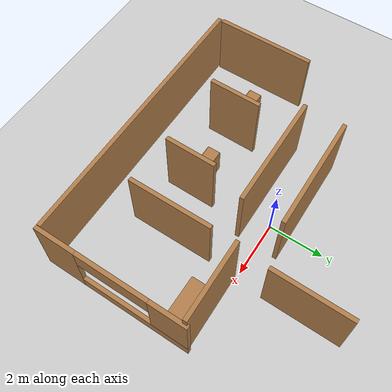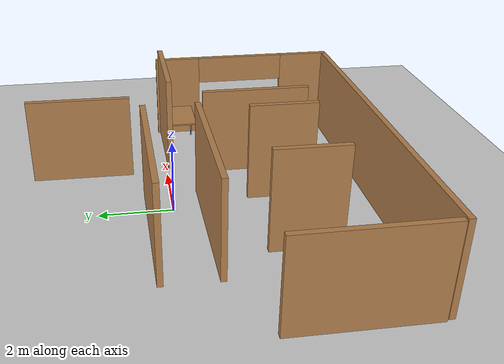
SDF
<sdf version="1.6">
 <world name="default">
  <include><uri>model://ground_plane</uri></include>
  <include><uri>model://sun</uri></include>
  <model name="world">
   <link name="Wall_88">
    <pose>-5.15151 -3.4628 0 0 -0 1.5708</pose>
    <inertial>
     <inertia><ixx>0</ixx><ixy>0</ixy><ixz>0</ixz><iyy>0</iyy><iyz>0</iyz><izz>0</izz></inertia>
     <mass>0</mass>
    </inertial>
    <visual name="Wall_88_Visual">
     <pose>0 0 1.25 0 -0 0</pose>
     <geometry><box><size>3.59711 0.15 2.5</size></box></geometry>
     <material>
      <script><uri>file://media/materials/scripts/gazebo.material</uri><name>Gazebo/Wood</name></script>
      <ambient>1 1 1 1</ambient>
      <diffuse>1 1 1 1</diffuse>
      <specular>0.2 0.2 0.2 1</specular>
      <emissive>0 0 0 1</emissive>
      <shader type="pixel"/>
     </material>
    </visual>
    <collision name="Wall_88_Collision">
     <pose>0 0 1.25 0 -0 0</pose>
     <geometry><box><size>3.59711 0.15 2.5</size></box></geometry>
     <surface>
      <friction>
       <ode><mu>1</mu><mu2>1</mu2><fdir1>0 0 0</fdir1><slip1>0</slip1><slip2>0</slip2></ode>
       <torsional>
        <coefficient>1</coefficient>
        <patch_radius>0</patch_radius>
        <surface_radius>0</surface_radius>
        <use_patch_radius>1</use_patch_radius>
        <ode><slip>0</slip></ode>
       </torsional>
      </friction>
      <bounce><restitution_coefficient>0</restitution_coefficient><threshold>1e+06</threshold></bounce>
      <contact>
       <collide_without_contact>0</collide_without_contact>
       <collide_without_contact_bitmask>1</collide_without_contact_bitmask>
       <collide_bitmask>1</collide_bitmask>
       <ode>
        <soft_cfm>0</soft_cfm>
        <soft_erp>0.2</soft_erp>
        <kp>1e+13</kp>
        <kd>1</kd>
        <max_vel>0.01</max_vel>
        <min_depth>0</min_depth>
       </ode>
       <bullet>
        <split_impulse>1</split_impulse>
        <split_impulse_penetration_threshold>-0.01</split_impulse_penetration_threshold>
        <soft_cfm>0</soft_cfm>
        <soft_erp>0.2</soft_erp>
        <kp>1e+13</kp>
        <kd>1</kd>
       </bullet>
      </contact>
     </surface>
    </collision>
   </link>
   <link name="Wall_88_clone">
    <pose>0.386788 -2.98185 0.146336 0 0 -1.57962</pose>
    <inertial>
     <inertia><ixx>0</ixx><ixy>0</ixy><ixz>0</ixz><iyy>0</iyy><iyz>0</iyz><izz>0</izz></inertia>
     <mass>0</mass>
    </inertial>
    <visual name="Wall_88_Visual">
     <pose>0 0 1.25 0 -0 0</pose>
     <geometry><box><size>1.84109 0.15 2.72696</size></box></geometry>
     <material>
      <script><uri>file://media/materials/scripts/gazebo.material</uri><name>Gazebo/Wood</name></script>
      <ambient>1 1 1 1</ambient>
      <diffuse>1 1 1 1</diffuse>
      <specular>0.2 0.2 0.2 1</specular>
      <emissive>0 0 0 1</emissive>
      <shader type="pixel"/>
     </material>
    </visual>
    <collision name="Wall_88_Collision">
     <pose>0 0 1.25 0 -0 0</pose>
     <geometry><box><size>1.84109 0.15 2.72696</size></box></geometry>
     <surface>
      <friction>
       <ode><mu>1</mu><mu2>1</mu2><fdir1>0 0 0</fdir1><slip1>0</slip1><slip2>0</slip2></ode>
       <torsional>
        <coefficient>1</coefficient>
        <patch_radius>0</patch_radius>
        <surface_radius>0</surface_radius>
        <use_patch_radius>1</use_patch_radius>
        <ode><slip>0</slip></ode>
       </torsional>
      </friction>
      <bounce><restitution_coefficient>0</restitution_coefficient><threshold>1e+06</threshold></bounce>
      <contact>
       <collide_without_contact>0</collide_without_contact>
       <collide_without_contact_bitmask>1</collide_without_contact_bitmask>
       <collide_bitmask>1</collide_bitmask>
       <ode>
        <soft_cfm>0</soft_cfm>
        <soft_erp>0.2</soft_erp>
        <kp>1e+13</kp>
        <kd>1</kd>
        <max_vel>0.01</max_vel>
        <min_depth>0</min_depth>
       </ode>
       <bullet>
        <split_impulse>1</split_impulse>
        <split_impulse_penetration_threshold>-0.01</split_impulse_penetration_threshold>
        <soft_cfm>0</soft_cfm>
        <soft_erp>0.2</soft_erp>
        <kp>1e+13</kp>
        <kd>1</kd>
       </bullet>
      </contact>
     </surface>
    </collision>
   </link>
   <link name="Wall_88_clone_clone_0_clone">
    <pose>-2.31759 -2.99242 0.227838 0 0 -1.57962</pose>
    <inertial>
     <inertia><ixx>0</ixx><ixy>0</ixy><ixz>0</ixz><iyy>0</iyy><iyz>0</iyz><izz>0</izz></inertia>
     <mass>0</mass>
    </inertial>
    <visual name="Wall_88_Visual">
     <pose>0 0 1.25 0 -0 0</pose>
     <geometry><box><size>1.88111 0.15 2.74078</size></box></geometry>
     <material>
      <script><uri>file://media/materials/scripts/gazebo.material</uri><name>Gazebo/Wood</name></script>
      <ambient>1 1 1 1</ambient>
      <diffuse>1 1 1 1</diffuse>
      <specular>0.2 0.2 0.2 1</specular>
      <emissive>0 0 0 1</emissive>
      <shader type="pixel"/>
     </material>
    </visual>
    <collision name="Wall_88_Collision">
     <pose>0 0 1.25 0 -0 0</pose>
     <geometry><box><size>1.88111 0.15 2.74078</size></box></geometry>
     <surface>
      <friction>
       <ode><mu>1</mu><mu2>1</mu2><fdir1>0 0 0</fdir1><slip1>0</slip1><slip2>0</slip2></ode>
       <torsional>
        <coefficient>1</coefficient>
        <patch_radius>0</patch_radius>
        <surface_radius>0</surface_radius>
        <use_patch_radius>1</use_patch_radius>
        <ode><slip>0</slip></ode>
       </torsional>
      </friction>
      <bounce><restitution_coefficient>0</restitution_coefficient><threshold>1e+06</threshold></bounce>
      <contact>
       <collide_without_contact>0</collide_without_contact>
       <collide_without_contact_bitmask>1</collide_without_contact_bitmask>
       <collide_bitmask>1</collide_bitmask>
       <ode>
        <soft_cfm>0</soft_cfm>
        <soft_erp>0.2</soft_erp>
        <kp>1e+13</kp>
        <kd>1</kd>
        <max_vel>0.01</max_vel>
        <min_depth>0</min_depth>
       </ode>
       <bullet>
        <split_impulse>1</split_impulse>
        <split_impulse_penetration_threshold>-0.01</split_impulse_penetration_threshold>
        <soft_cfm>0</soft_cfm>
        <soft_erp>0.2</soft_erp>
        <kp>1e+13</kp>
        <kd>1</kd>
       </bullet>
      </contact>
     </surface>
    </collision>
   </link>
   <link name="Wall_88_clone_clone_0_clone_0">
    <pose>-1.15582 0.643238 0.112815 0 0 -3.12845</pose>
    <inertial>
     <inertia><ixx>0</ixx><ixy>0</ixy><ixz>0</ixz><iyy>0</iyy><iyz>0</iyz><izz>0</izz></inertia>
     <mass>0</mass>
    </inertial>
    <visual name="Wall_88_Visual">
     <pose>0 0 1.25 0 -0 0</pose>
     <geometry><box><size>4.17126 0.15 2.67838</size></box></geometry>
     <material>
      <script><uri>file://media/materials/scripts/gazebo.material</uri><name>Gazebo/Wood</name></script>
      <ambient>1 1 1 1</ambient>
      <diffuse>1 1 1 1</diffuse>
      <specular>0.2 0.2 0.2 1</specular>
      <emissive>0 0 0 1</emissive>
      <shader type="pixel"/>
     </material>
    </visual>
    <collision name="Wall_88_Collision">
     <pose>0 0 1.25 0 -0 0</pose>
     <geometry><box><size>4.17126 0.15 2.67838</size></box></geometry>
     <surface>
      <friction>
       <ode><mu>1</mu><mu2>1</mu2><fdir1>0 0 0</fdir1><slip1>0</slip1><slip2>0</slip2></ode>
       <torsional>
        <coefficient>1</coefficient>
        <patch_radius>0</patch_radius>
        <surface_radius>0</surface_radius>
        <use_patch_radius>1</use_patch_radius>
        <ode><slip>0</slip></ode>
       </torsional>
      </friction>
      <bounce><restitution_coefficient>0</restitution_coefficient><threshold>1e+06</threshold></bounce>
      <contact>
       <collide_without_contact>0</collide_without_contact>
       <collide_without_contact_bitmask>1</collide_without_contact_bitmask>
       <collide_bitmask>1</collide_bitmask>
       <ode>
        <soft_cfm>0</soft_cfm>
        <soft_erp>0.2</soft_erp>
        <kp>1e+13</kp>
        <kd>1</kd>
        <max_vel>0.01</max_vel>
        <min_depth>0</min_depth>
       </ode>
       <bullet>
        <split_impulse>1</split_impulse>
        <split_impulse_penetration_threshold>-0.01</split_impulse_penetration_threshold>
        <soft_cfm>0</soft_cfm>
        <soft_erp>0.2</soft_erp>
        <kp>1e+13</kp>
        <kd>1</kd>
       </bullet>
      </contact>
     </surface>
    </collision>
   </link>
   <link name="Wall_88_clone_clone_0_clone_0_clone">
    <pose>-1.16525 -0.804383 0.112815 0 0 -3.12845</pose>
    <inertial>
     <inertia><ixx>0</ixx><ixy>0</ixy><ixz>0</ixz><iyy>0</iyy><iyz>0</iyz><izz>0</izz></inertia>
     <mass>0</mass>
    </inertial>
    <visual name="Wall_88_Visual">
     <pose>0 0 1.25 0 -0 0</pose>
     <geometry><box><size>4.17126 0.15 2.67838</size></box></geometry>
     <material>
      <script><uri>file://media/materials/scripts/gazebo.material</uri><name>Gazebo/Wood</name></script>
      <ambient>1 1 1 1</ambient>
      <diffuse>1 1 1 1</diffuse>
      <specular>0.2 0.2 0.2 1</specular>
      <emissive>0 0 0 1</emissive>
      <shader type="pixel"/>
     </material>
    </visual>
    <collision name="Wall_88_Collision">
     <pose>0 0 1.25 0 -0 0</pose>
     <geometry><box><size>4.17126 0.15 2.67838</size></box></geometry>
     <surface>
      <friction>
       <ode><mu>1</mu><mu2>1</mu2><fdir1>0 0 0</fdir1><slip1>0</slip1><slip2>0</slip2></ode>
       <torsional>
        <coefficient>1</coefficient>
        <patch_radius>0</patch_radius>
        <surface_radius>0</surface_radius>
        <use_patch_radius>1</use_patch_radius>
        <ode><slip>0</slip></ode>
       </torsional>
      </friction>
      <bounce><restitution_coefficient>0</restitution_coefficient><threshold>1e+06</threshold></bounce>
      <contact>
       <collide_without_contact>0</collide_without_contact>
       <collide_without_contact_bitmask>1</collide_without_contact_bitmask>
       <collide_bitmask>1</collide_bitmask>
       <ode>
        <soft_cfm>0</soft_cfm>
        <soft_erp>0.2</soft_erp>
        <kp>1e+13</kp>
        <kd>1</kd>
        <max_vel>0.01</max_vel>
        <min_depth>0</min_depth>
       </ode>
       <bullet>
        <split_impulse>1</split_impulse>
        <split_impulse_penetration_threshold>-0.01</split_impulse_penetration_threshold>
        <soft_cfm>0</soft_cfm>
        <soft_erp>0.2</soft_erp>
        <kp>1e+13</kp>
        <kd>1</kd>
       </bullet>
      </contact>
     </surface>
    </collision>
   </link>
   <link name="Wall_88_clone_clone_0_clone_1">
    <pose>3.59873 -0.112247 0.164975 0 0 -3.12845</pose>
    <inertial>
     <inertia><ixx>0</ixx><ixy>0</ixy><ixz>0</ixz><iyy>0</iyy><iyz>0</iyz><izz>0</izz></inertia>
     <mass>0</mass>
    </inertial>
    <visual name="Wall_88_Visual">
     <pose>0 0 1.25 0 -0 0</pose>
     <geometry><box><size>2.794 0.15 2.77966</size></box></geometry>
     <material>
      <script><uri>file://media/materials/scripts/gazebo.material</uri><name>Gazebo/Wood</name></script>
      <ambient>1 1 1 1</ambient>
      <diffuse>1 1 1 1</diffuse>
      <specular>0.2 0.2 0.2 1</specular>
      <emissive>0 0 0 1</emissive>
      <shader type="pixel"/>
     </material>
    </visual>
    <collision name="Wall_88_Collision">
     <pose>0 0 1.25 0 -0 0</pose>
     <geometry><box><size>2.794 0.15 2.77966</size></box></geometry>
     <surface>
      <friction>
       <ode><mu>1</mu><mu2>1</mu2><fdir1>0 0 0</fdir1><slip1>0</slip1><slip2>0</slip2></ode>
       <torsional>
        <coefficient>1</coefficient>
        <patch_radius>0</patch_radius>
        <surface_radius>0</surface_radius>
        <use_patch_radius>1</use_patch_radius>
        <ode><slip>0</slip></ode>
       </torsional>
      </friction>
      <bounce><restitution_coefficient>0</restitution_coefficient><threshold>1e+06</threshold></bounce>
      <contact>
       <collide_without_contact>0</collide_without_contact>
       <collide_without_contact_bitmask>1</collide_without_contact_bitmask>
       <collide_bitmask>1</collide_bitmask>
       <ode>
        <soft_cfm>0</soft_cfm>
        <soft_erp>0.2</soft_erp>
        <kp>1e+13</kp>
        <kd>1</kd>
        <max_vel>0.01</max_vel>
        <min_depth>0</min_depth>
       </ode>
       <bullet>
        <split_impulse>1</split_impulse>
        <split_impulse_penetration_threshold>-0.01</split_impulse_penetration_threshold>
        <soft_cfm>0</soft_cfm>
        <soft_erp>0.2</soft_erp>
        <kp>1e+13</kp>
        <kd>1</kd>
       </bullet>
      </contact>
     </surface>
    </collision>
   </link>
   <link name="Wall_88_clone_clone_1_clone">
    <pose>2.27024 2.40147 -0.083025 0 0 -1.57962</pose>
    <inertial>
     <inertia><ixx>0</ixx><ixy>0</ixy><ixz>0</ixz><iyy>0</iyy><iyz>0</iyz><izz>0</izz></inertia>
     <mass>0</mass>
    </inertial>
    <visual name="Wall_88_Visual">
     <pose>0 0 1.25 0 -0 0</pose>
     <geometry><box><size>2.83827 0.15 2.45305</size></box></geometry>
     <material>
      <script><uri>file://media/materials/scripts/gazebo.material</uri><name>Gazebo/Wood</name></script>
      <ambient>1 1 1 1</ambient>
      <diffuse>1 1 1 1</diffuse>
      <specular>0.2 0.2 0.2 1</specular>
      <emissive>0 0 0 1</emissive>
      <shader type="pixel"/>
     </material>
    </visual>
    <collision name="Wall_88_Collision">
     <pose>0 0 1.25 0 -0 0</pose>
     <geometry><box><size>2.83827 0.15 2.45305</size></box></geometry>
     <surface>
      <friction>
       <ode><mu>1</mu><mu2>1</mu2><fdir1>0 0 0</fdir1><slip1>0</slip1><slip2>0</slip2></ode>
       <torsional>
        <coefficient>1</coefficient>
        <patch_radius>0</patch_radius>
        <surface_radius>0</surface_radius>
        <use_patch_radius>1</use_patch_radius>
        <ode><slip>0</slip></ode>
       </torsional>
      </friction>
      <bounce><restitution_coefficient>0</restitution_coefficient><threshold>1e+06</threshold></bounce>
      <contact>
       <collide_without_contact>0</collide_without_contact>
       <collide_without_contact_bitmask>1</collide_without_contact_bitmask>
       <collide_bitmask>1</collide_bitmask>
       <ode>
        <soft_cfm>0</soft_cfm>
        <soft_erp>0.2</soft_erp>
        <kp>1e+13</kp>
        <kd>1</kd>
        <max_vel>0.01</max_vel>
        <min_depth>0</min_depth>
       </ode>
       <bullet>
        <split_impulse>1</split_impulse>
        <split_impulse_penetration_threshold>-0.01</split_impulse_penetration_threshold>
        <soft_cfm>0</soft_cfm>
        <soft_erp>0.2</soft_erp>
        <kp>1e+13</kp>
        <kd>1</kd>
       </bullet>
      </contact>
     </surface>
    </collision>
   </link>
   <link name="Wall_93">
    <pose>2.13924 -2.58302 0 0 0 -1.5708</pose>
    <inertial>
     <inertia><ixx>0</ixx><ixy>0</ixy><ixz>0</ixz><iyy>0</iyy><iyz>0</iyz><izz>0</izz></inertia>
     <mass>0</mass>
    </inertial>
    <visual name="Wall_93_Visual">
     <pose>0 0 1.25 0 -0 0</pose>
     <geometry><box><size>3.04334 0.15 2.5</size></box></geometry>
     <material>
      <script><uri>file://media/materials/scripts/gazebo.material</uri><name>Gazebo/Wood</name></script>
      <ambient>1 1 1 1</ambient>
      <diffuse>1 1 1 1</diffuse>
      <specular>0.2 0.2 0.2 1</specular>
      <emissive>0 0 0 1</emissive>
      <shader type="pixel"/>
     </material>
    </visual>
    <collision name="Wall_93_Collision">
     <pose>0 0 1.25 0 -0 0</pose>
     <geometry><box><size>3.04334 0.15 2.5</size></box></geometry>
     <surface>
      <friction>
       <ode><mu>1</mu><mu2>1</mu2><fdir1>0 0 0</fdir1><slip1>0</slip1><slip2>0</slip2></ode>
       <torsional>
        <coefficient>1</coefficient>
        <patch_radius>0</patch_radius>
        <surface_radius>0</surface_radius>
        <use_patch_radius>1</use_patch_radius>
        <ode><slip>0</slip></ode>
       </torsional>
      </friction>
      <bounce><restitution_coefficient>0</restitution_coefficient><threshold>1e+06</threshold></bounce>
      <contact>
       <collide_without_contact>0</collide_without_contact>
       <collide_without_contact_bitmask>1</collide_without_contact_bitmask>
       <collide_bitmask>1</collide_bitmask>
       <ode>
        <soft_cfm>0</soft_cfm>
        <soft_erp>0.2</soft_erp>
        <kp>1e+13</kp>
        <kd>1</kd>
        <max_vel>0.01</max_vel>
        <min_depth>0</min_depth>
       </ode>
       <bullet>
        <split_impulse>1</split_impulse>
        <split_impulse_penetration_threshold>-0.01</split_impulse_penetration_threshold>
        <soft_cfm>0</soft_cfm>
        <soft_erp>0.2</soft_erp>
        <kp>1e+13</kp>
        <kd>1</kd>
       </bullet>
      </contact>
     </surface>
    </collision>
   </link>
   <link name="Wall_94">
    <pose>-0.119907 -5.38792 0 0 -0 0</pose>
    <inertial>
     <inertia><ixx>0</ixx><ixy>0</ixy><ixz>0</ixz><iyy>0</iyy><iyz>0</iyz><izz>0</izz></inertia>
     <mass>0</mass>
    </inertial>
    <visual name="Wall_94_Visual">
     <pose>0 0 1.25 0 -0 0</pose>
     <geometry><box><size>10.1033 0.15 2.5</size></box></geometry>
     <material>
      <script><uri>file://media/materials/scripts/gazebo.material</uri><name>Gazebo/Wood</name></script>
      <ambient>1 1 1 1</ambient>
      <diffuse>1 1 1 1</diffuse>
      <specular>0.2 0.2 0.2 1</specular>
      <emissive>0 0 0 1</emissive>
      <shader type="pixel"/>
     </material>
    </visual>
    <collision name="Wall_94_Collision">
     <pose>0 0 1.25 0 -0 0</pose>
     <geometry><box><size>10.1033 0.15 2.5</size></box></geometry>
     <surface>
      <friction>
       <ode><mu>1</mu><mu2>1</mu2><fdir1>0 0 0</fdir1><slip1>0</slip1><slip2>0</slip2></ode>
       <torsional>
        <coefficient>1</coefficient>
        <patch_radius>0</patch_radius>
        <surface_radius>0</surface_radius>
        <use_patch_radius>1</use_patch_radius>
        <ode><slip>0</slip></ode>
       </torsional>
      </friction>
      <bounce><restitution_coefficient>0</restitution_coefficient><threshold>1e+06</threshold></bounce>
      <contact>
       <collide_without_contact>0</collide_without_contact>
       <collide_without_contact_bitmask>1</collide_without_contact_bitmask>
       <collide_bitmask>1</collide_bitmask>
       <ode>
        <soft_cfm>0</soft_cfm>
        <soft_erp>0.2</soft_erp>
        <kp>1e+13</kp>
        <kd>1</kd>
        <max_vel>0.01</max_vel>
        <min_depth>0</min_depth>
       </ode>
       <bullet>
        <split_impulse>1</split_impulse>
        <split_impulse_penetration_threshold>-0.01</split_impulse_penetration_threshold>
        <soft_cfm>0</soft_cfm>
        <soft_erp>0.2</soft_erp>
        <kp>1e+13</kp>
        <kd>1</kd>
       </bullet>
      </contact>
     </surface>
    </collision>
   </link>
   <link name="Wall_96_clone">
    <pose>5.01671 -2.70631 0 0 -0 1.5708</pose>
    <visual name="Wall_96_Visual_0">
     <pose>-1.99826 0 1.25 0 -0 0</pose>
     <geometry><box><size>1.50348 0.15 2.5</size></box></geometry>
     <material>
      <script><uri>file://media/materials/scripts/gazebo.material</uri><name>Gazebo/Wood</name></script>
      <ambient>1 1 1 1</ambient>
      <diffuse>1 1 1 1</diffuse>
      <specular>0.2 0.2 0.2 1</specular>
      <emissive>0 0 0 1</emissive>
      <shader type="pixel"/>
     </material>
    </visual>
    <visual name="Wall_96_Visual_1">
     <pose>0.75174 0 0.25 0 -0 0</pose>
     <geometry><box><size>3.99652 0.15 0.5</size></box></geometry>
     <material>
      <script><uri>file://media/materials/scripts/gazebo.material</uri><name>Gazebo/Wood</name></script>
      <ambient>1 1 1 1</ambient>
      <diffuse>1 1 1 1</diffuse>
      <specular>0.2 0.2 0.2 1</specular>
      <emissive>0 0 0 1</emissive>
      <shader type="pixel"/>
     </material>
    </visual>
    <visual name="Wall_96_Visual_2">
     <pose>2.06924 0 1.5 0 -0 0</pose>
     <geometry><box><size>1.36152 0.15 2</size></box></geometry>
     <material>
      <script><uri>file://media/materials/scripts/gazebo.material</uri><name>Gazebo/Wood</name></script>
      <ambient>1 1 1 1</ambient>
      <diffuse>1 1 1 1</diffuse>
      <specular>0.2 0.2 0.2 1</specular>
      <emissive>0 0 0 1</emissive>
      <shader type="pixel"/>
     </material>
    </visual>
    <visual name="Wall_96_Visual_3">
     <pose>0.070981 0 2.1 0 -0 0</pose>
     <geometry><box><size>2.635 0.15 0.8</size></box></geometry>
     <material>
      <script><uri>file://media/materials/scripts/gazebo.material</uri><name>Gazebo/Wood</name></script>
      <ambient>1 1 1 1</ambient>
      <diffuse>1 1 1 1</diffuse>
      <specular>0.2 0.2 0.2 1</specular>
      <emissive>0 0 0 1</emissive>
      <shader type="pixel"/>
     </material>
    </visual>
    <collision name="Wall_96_Collision_1">
     <pose>0.75174 0 0.25 0 -0 0</pose>
     <geometry><box><size>3.99652 0.15 0.5</size></box></geometry>
     <surface>
      <friction>
       <ode><mu>1</mu><mu2>1</mu2><fdir1>0 0 0</fdir1><slip1>0</slip1><slip2>0</slip2></ode>
       <torsional>
        <coefficient>1</coefficient>
        <patch_radius>0</patch_radius>
        <surface_radius>0</surface_radius>
        <use_patch_radius>1</use_patch_radius>
        <ode><slip>0</slip></ode>
       </torsional>
      </friction>
      <bounce><restitution_coefficient>0</restitution_coefficient><threshold>1e+06</threshold></bounce>
      <contact>
       <collide_without_contact>0</collide_without_contact>
       <collide_without_contact_bitmask>1</collide_without_contact_bitmask>
       <collide_bitmask>1</collide_bitmask>
       <ode>
        <soft_cfm>0</soft_cfm>
        <soft_erp>0.2</soft_erp>
        <kp>1e+13</kp>
        <kd>1</kd>
        <max_vel>0.01</max_vel>
        <min_depth>0</min_depth>
       </ode>
       <bullet>
        <split_impulse>1</split_impulse>
        <split_impulse_penetration_threshold>-0.01</split_impulse_penetration_threshold>
        <soft_cfm>0</soft_cfm>
        <soft_erp>0.2</soft_erp>
        <kp>1e+13</kp>
        <kd>1</kd>
       </bullet>
      </contact>
     </surface>
    </collision>
    <collision name="Wall_96_Collision_2">
     <pose>2.06924 0 1.5 0 -0 0</pose>
     <geometry><box><size>1.36152 0.15 2</size></box></geometry>
     <surface>
      <friction>
       <ode><mu>1</mu><mu2>1</mu2><fdir1>0 0 0</fdir1><slip1>0</slip1><slip2>0</slip2></ode>
       <torsional>
        <coefficient>1</coefficient>
        <patch_radius>0</patch_radius>
        <surface_radius>0</surface_radius>
        <use_patch_radius>1</use_patch_radius>
        <ode><slip>0</slip></ode>
       </torsional>
      </friction>
      <bounce><restitution_coefficient>0</restitution_coefficient><threshold>1e+06</threshold></bounce>
      <contact>
       <collide_without_contact>0</collide_without_contact>
       <collide_without_contact_bitmask>1</collide_without_contact_bitmask>
       <collide_bitmask>1</collide_bitmask>
       <ode>
        <soft_cfm>0</soft_cfm>
        <soft_erp>0.2</soft_erp>
        <kp>1e+13</kp>
        <kd>1</kd>
        <max_vel>0.01</max_vel>
        <min_depth>0</min_depth>
       </ode>
       <bullet>
        <split_impulse>1</split_impulse>
        <split_impulse_penetration_threshold>-0.01</split_impulse_penetration_threshold>
        <soft_cfm>0</soft_cfm>
        <soft_erp>0.2</soft_erp>
        <kp>1e+13</kp>
        <kd>1</kd>
       </bullet>
      </contact>
     </surface>
    </collision>
    <collision name="Wall_96_Collision_3">
     <pose>0.070981 0 2.1 0 -0 0</pose>
     <geometry><box><size>2.635 0.15 0.8</size></box></geometry>
     <surface>
      <friction>
       <ode><mu>1</mu><mu2>1</mu2><fdir1>0 0 0</fdir1><slip1>0</slip1><slip2>0</slip2></ode>
       <torsional>
        <coefficient>1</coefficient>
        <patch_radius>0</patch_radius>
        <surface_radius>0</surface_radius>
        <use_patch_radius>1</use_patch_radius>
        <ode><slip>0</slip></ode>
       </torsional>
      </friction>
      <bounce><restitution_coefficient>0</restitution_coefficient><threshold>1e+06</threshold></bounce>
      <contact>
       <collide_without_contact>0</collide_without_contact>
       <collide_without_contact_bitmask>1</collide_without_contact_bitmask>
       <collide_bitmask>1</collide_bitmask>
       <ode>
        <soft_cfm>0</soft_cfm>
        <soft_erp>0.2</soft_erp>
        <kp>1e+13</kp>
        <kd>1</kd>
        <max_vel>0.01</max_vel>
        <min_depth>0</min_depth>
       </ode>
       <bullet>
        <split_impulse>1</split_impulse>
        <split_impulse_penetration_threshold>-0.01</split_impulse_penetration_threshold>
        <soft_cfm>0</soft_cfm>
        <soft_erp>0.2</soft_erp>
        <kp>1e+13</kp>
        <kd>1</kd>
       </bullet>
      </contact>
     </surface>
    </collision>
    <collision name="Wall_96_Collision_0">
     <pose>-1.99826 0 1.25 0 -0 0</pose>
     <geometry><box><size>1.50348 0.15 2.5</size></box></geometry>
     <surface>
      <friction>
       <ode><mu>1</mu><mu2>1</mu2><fdir1>0 0 0</fdir1><slip1>0</slip1><slip2>0</slip2></ode>
       <torsional>
        <coefficient>1</coefficient>
        <patch_radius>0</patch_radius>
        <surface_radius>0</surface_radius>
        <use_patch_radius>1</use_patch_radius>
        <ode><slip>0</slip></ode>
       </torsional>
      </friction>
      <bounce><restitution_coefficient>0</restitution_coefficient><threshold>1e+06</threshold></bounce>
      <contact>
       <collide_without_contact>0</collide_without_contact>
       <collide_without_contact_bitmask>1</collide_without_contact_bitmask>
       <collide_bitmask>1</collide_bitmask>
       <ode>
        <soft_cfm>0</soft_cfm>
        <soft_erp>0.2</soft_erp>
        <kp>1e+13</kp>
        <kd>1</kd>
        <max_vel>0.01</max_vel>
        <min_depth>0</min_depth>
       </ode>
       <bullet>
        <split_impulse>1</split_impulse>
        <split_impulse_penetration_threshold>-0.01</split_impulse_penetration_threshold>
        <soft_cfm>0</soft_cfm>
        <soft_erp>0.2</soft_erp>
        <kp>1e+13</kp>
        <kd>1</kd>
       </bullet>
      </contact>
     </surface>
    </collision>
   </link>
   <model name="cabinet">
    <static>1</static>
    <link name="cabinet_bottom_plate">
     <inertial>
      <pose>0 0 -1 0 -0 0</pose>
      <inertia><ixx>2.05</ixx><ixy>0</ixy><ixz>0</ixz><iyy>2.05</iyy><iyz>0</iyz><izz>2.05</izz></inertia>
      <mass>25</mass>
     </inertial>
     <collision name="cabinet_bottom_plate_geom">
      <pose>0 0 0.01 0 -0 0</pose>
      <geometry><box><size>0.45 0.45 0.02</size></box></geometry>
     </collision>
     <visual name="cabinet_bottom_plate_geom_visual">
      <pose>0 0 0.01 0 -0 0</pose>
      <geometry><box><size>0.45 0.45 0.02</size></box></geometry>
      <material>
       <script><uri>file://media/materials/scripts/gazebo.material</uri><name>Gazebo/Wood</name></script>
      </material>
     </visual>
     <collision name="cabinet_bottom_plate_geom_cabinet_back_plate">
      <pose>0.235 0 0.51 0 -0 0</pose>
      <geometry><box><size>0.02 0.45 1.02</size></box></geometry>
     </collision>
     <visual name="cabinet_bottom_plate_geom_cabinet_back_plate_visual">
      <pose>0.235 0 0.51 0 -0 0</pose>
      <geometry><box><size>0.02 0.45 1.02</size></box></geometry>
      <material>
       <script><uri>file://media/materials/scripts/gazebo.material</uri><name>Gazebo/Wood</name></script>
      </material>
     </visual>
     <collision name="cabinet_bottom_plate_geom_cabinet_left_plate">
      <pose>0 0.235 0.51 0 -0 0</pose>
      <geometry><box><size>0.45 0.02 1.02</size></box></geometry>
     </collision>
     <visual name="cabinet_bottom_plate_geom_cabinet_left_plate_visual">
      <pose>0 0.235 0.51 0 -0 0</pose>
      <geometry><box><size>0.45 0.02 1.02</size></box></geometry>
      <material>
       <script><uri>file://media/materials/scripts/gazebo.material</uri><name>Gazebo/Wood</name></script>
      </material>
     </visual>
     <collision name="cabinet_bottom_plate_geom_cabinet_middle_plate">
      <pose>0 0 0.51 0 -0 0</pose>
      <geometry><box><size>0.45 0.45 0.02</size></box></geometry>
     </collision>
     <visual name="cabinet_bottom_plate_geom_cabinet_middle_plate_visual">
      <pose>0 0 0.51 0 -0 0</pose>
      <geometry><box><size>0.45 0.45 0.02</size></box></geometry>
      <material>
       <script><uri>file://media/materials/scripts/gazebo.material</uri><name>Gazebo/Wood</name></script>
      </material>
     </visual>
     <collision name="cabinet_bottom_plate_geom_cabinet_right_plate">
      <pose>0 -0.235 0.51 0 -0 0</pose>
      <geometry><box><size>0.45 0.02 1.02</size></box></geometry>
     </collision>
     <visual name="cabinet_bottom_plate_geom_cabinet_right_plate_visual">
      <pose>0 -0.235 0.51 0 -0 0</pose>
      <geometry><box><size>0.45 0.02 1.02</size></box></geometry>
      <material>
       <script><uri>file://media/materials/scripts/gazebo.material</uri><name>Gazebo/Wood</name></script>
      </material>
     </visual>
     <collision name="cabinet_bottom_plate_geom_cabinet_top_plate">
      <pose>0 0 1.01 0 -0 0</pose>
      <geometry><box><size>0.45 0.45 0.02</size></box></geometry>
     </collision>
     <visual name="cabinet_bottom_plate_geom_cabinet_top_plate_visual">
      <pose>0 0 1.01 0 -0 0</pose>
      <geometry><box><size>0.45 0.45 0.02</size></box></geometry>
      <material>
       <script><uri>file://media/materials/scripts/gazebo.material</uri><name>Gazebo/Wood</name></script>
      </material>
     </visual>
    </link>
    <pose>-3.76602 -3.03258 0 0 -0 0</pose>
   </model>
   <model name="cabinet_0_clone">
    <static>1</static>
    <link name="cabinet_bottom_plate">
     <inertial>
      <pose>0 0 -1 0 -0 0</pose>
      <inertia><ixx>2.05</ixx><ixy>0</ixy><ixz>0</ixz><iyy>2.05</iyy><iyz>0</iyz><izz>2.05</izz></inertia>
      <mass>25</mass>
     </inertial>
     <collision name="cabinet_bottom_plate_geom">
      <pose>0 0 0.01 0 -0 0</pose>
      <geometry><box><size>0.45 0.45 0.02</size></box></geometry>
     </collision>
     <visual name="cabinet_bottom_plate_geom_visual">
      <pose>0 0 0.01 0 -0 0</pose>
      <geometry><box><size>0.45 0.45 0.02</size></box></geometry>
      <material>
       <script><uri>file://media/materials/scripts/gazebo.material</uri><name>Gazebo/Wood</name></script>
      </material>
     </visual>
     <collision name="cabinet_bottom_plate_geom_cabinet_back_plate">
      <pose>0.235 0 0.51 0 -0 0</pose>
      <geometry><box><size>0.02 0.45 1.02</size></box></geometry>
     </collision>
     <visual name="cabinet_bottom_plate_geom_cabinet_back_plate_visual">
      <pose>0.235 0 0.51 0 -0 0</pose>
      <geometry><box><size>0.02 0.45 1.02</size></box></geometry>
      <material>
       <script><uri>file://media/materials/scripts/gazebo.material</uri><name>Gazebo/Wood</name></script>
      </material>
     </visual>
     <collision name="cabinet_bottom_plate_geom_cabinet_left_plate">
      <pose>0 0.235 0.51 0 -0 0</pose>
      <geometry><box><size>0.45 0.02 1.02</size></box></geometry>
     </collision>
     <visual name="cabinet_bottom_plate_geom_cabinet_left_plate_visual">
      <pose>0 0.235 0.51 0 -0 0</pose>
      <geometry><box><size>0.45 0.02 1.02</size></box></geometry>
      <material>
       <script><uri>file://media/materials/scripts/gazebo.material</uri><name>Gazebo/Wood</name></script>
      </material>
     </visual>
     <collision name="cabinet_bottom_plate_geom_cabinet_middle_plate">
      <pose>0 0 0.51 0 -0 0</pose>
      <geometry><box><size>0.45 0.45 0.02</size></box></geometry>
     </collision>
     <visual name="cabinet_bottom_plate_geom_cabinet_middle_plate_visual">
      <pose>0 0 0.51 0 -0 0</pose>
      <geometry><box><size>0.45 0.45 0.02</size></box></geometry>
      <material>
       <script><uri>file://media/materials/scripts/gazebo.material</uri><name>Gazebo/Wood</name></script>
      </material>
     </visual>
     <collision name="cabinet_bottom_plate_geom_cabinet_right_plate">
      <pose>0 -0.235 0.51 0 -0 0</pose>
      <geometry><box><size>0.45 0.02 1.02</size></box></geometry>
     </collision>
     <visual name="cabinet_bottom_plate_geom_cabinet_right_plate_visual">
      <pose>0 -0.235 0.51 0 -0 0</pose>
      <geometry><box><size>0.45 0.02 1.02</size></box></geometry>
      <material>
       <script><uri>file://media/materials/scripts/gazebo.material</uri><name>Gazebo/Wood</name></script>
      </material>
     </visual>
     <collision name="cabinet_bottom_plate_geom_cabinet_top_plate">
      <pose>0 0 1.01 0 -0 0</pose>
      <geometry><box><size>0.45 0.45 0.02</size></box></geometry>
     </collision>
     <visual name="cabinet_bottom_plate_geom_cabinet_top_plate_visual">
      <pose>0 0 1.01 0 -0 0</pose>
      <geometry><box><size>0.45 0.45 0.02</size></box></geometry>
      <material>
       <script><uri>file://media/materials/scripts/gazebo.material</uri><name>Gazebo/Wood</name></script>
      </material>
     </visual>
    </link>
    <pose>-0.809577 -2.95839 0 0 -0 0</pose>
   </model>
   <model name="table_clone">
    <static>0</static>
    <link name="link">
     <collision name="surface">
      <pose>0 0 1 0 -0 0</pose>
      <geometry><box><size>1.5 0.8 0.03</size></box></geometry>
      <surface><friction><ode><mu>0.6</mu><mu2>0.6</mu2></ode></friction></surface>
     </collision>
     <visual name="visual1">
      <pose>0 0 1 0 -0 0</pose>
      <geometry><box><size>1.4 0.8 0.04</size></box></geometry>
      <material>
       <script><uri>file://media/materials/scripts/gazebo.material</uri><name>Gazebo/Wood</name></script>
      </material>
     </visual>
     <collision name="front_left_leg">
      <pose>0.68 0.38 0.5 0 -0 0</pose>
      <geometry><cylinder><radius>0.02</radius><length>1</length></cylinder></geometry>
     </collision>
     <visual name="front_left_leg">
      <pose>0.68 0.38 0.5 0 -0 0</pose>
      <geometry><cylinder><radius>0.02</radius><length>1</length></cylinder></geometry>
      <material>
       <script><uri>file://media/materials/scripts/gazebo.material</uri><name>Gazebo/Grey</name></script>
      </material>
     </visual>
     <collision name="front_right_leg">
      <pose>0.68 -0.38 0.5 0 -0 0</pose>
      <geometry><cylinder><radius>0.02</radius><length>1</length></cylinder></geometry>
     </collision>
     <visual name="front_right_leg">
      <pose>0.68 -0.38 0.5 0 -0 0</pose>
      <geometry><cylinder><radius>0.02</radius><length>1</length></cylinder></geometry>
      <material>
       <script><uri>file://media/materials/scripts/gazebo.material</uri><name>Gazebo/Grey</name></script>
      </material>
     </visual>
     <collision name="back_right_leg">
      <pose>-0.68 -0.38 0.5 0 -0 0</pose>
      <geometry><cylinder><radius>0.02</radius><length>1</length></cylinder></geometry>
     </collision>
     <visual name="back_right_leg">
      <pose>-0.68 -0.38 0.5 0 -0 0</pose>
      <geometry><cylinder><radius>0.02</radius><length>1</length></cylinder></geometry>
      <material>
       <script><uri>file://media/materials/scripts/gazebo.material</uri><name>Gazebo/Grey</name></script>
      </material>
     </visual>
     <collision name="back_left_leg">
      <pose>-0.68 0.38 0.5 0 -0 0</pose>
      <geometry><cylinder><radius>0.02</radius><length>1</length></cylinder></geometry>
     </collision>
     <visual name="back_left_leg">
      <pose>-0.68 0.38 0.5 0 -0 0</pose>
      <geometry><cylinder><radius>0.02</radius><length>1</length></cylinder></geometry>
      <material>
       <script><uri>file://media/materials/scripts/gazebo.material</uri><name>Gazebo/Grey</name></script>
      </material>
     </visual>
     <inertial>
      <inertia><ixx>1</ixx><ixy>0</ixy><ixz>0</ixz><iyy>1</iyy><iyz>0</iyz><izz>1</izz></inertia>
      <mass>1</mass>
     </inertial>
    </link>
    <pose>3.96737 -0.618352 0 0 0 -3.14086</pose>
   </model>
   <static>1</static>
  </model>
 </world>
</sdf>
